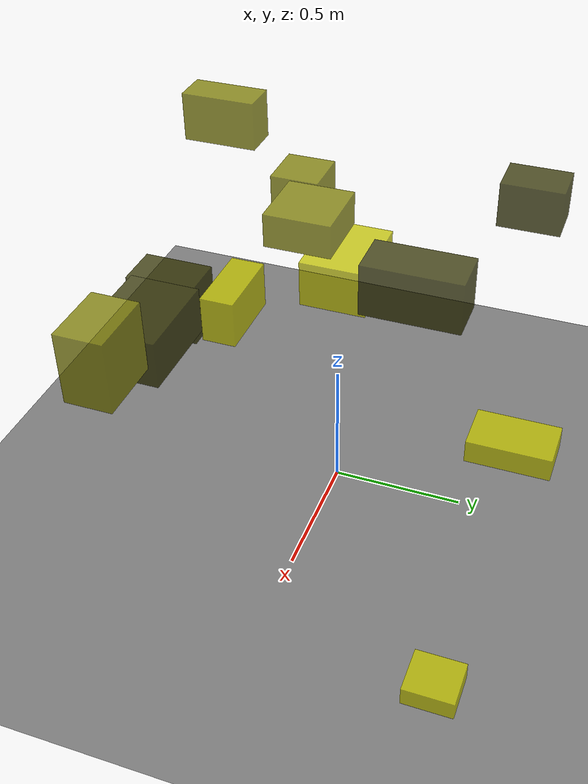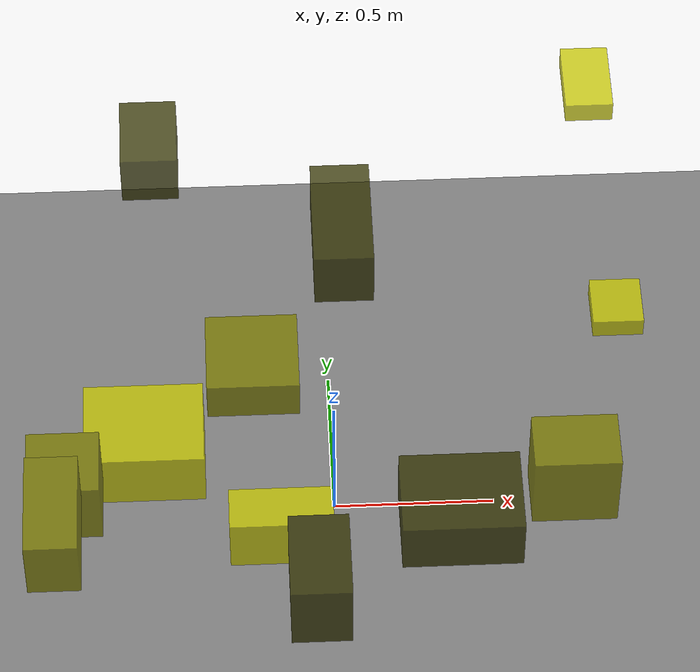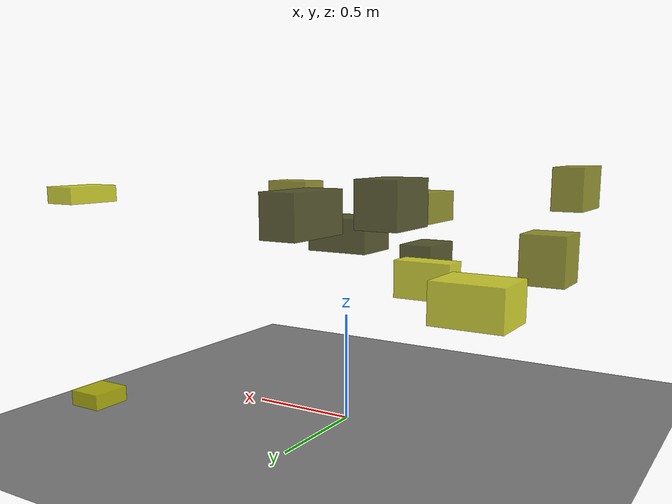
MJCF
<?xml version="1.0"?>
<mujoco model="obstacle_scene">
  <compiler angle="radian" coordinate="local"/>
  <option timestep="0.001" gravity="0 0 -9.81"/>

  <asset>
    <material name="obstacle_mat" rgba="0.8 0.8 0.0 0.8"/>
    <material name="ground_mat" rgba="0.5 0.5 0.5 1"/>
  </asset>

  <worldbody>
    <!-- Ground plane -->
    <geom name="ground" type="plane" size="3 3 0.1" material="ground_mat"/>

    <!-- Obstacles -->
    <body name="obstacle_0" pos="0.037415 0.299247 0.988063">
      <geom name="obs_0" type="box" size="0.088090 0.182049 0.099060" rgba="0.2 0.2 0.0 0.8"/>
    </body>
    <body name="obstacle_1" pos="0.668392 -0.562722 0.940680">
      <geom name="obs_1" type="box" size="0.122851 0.086925 0.134639" rgba="0.5 0.5 0.0 0.8"/>
    </body>
    <body name="obstacle_2" pos="0.940138 0.656117 0.134934">
      <geom name="obs_2" type="box" size="0.081114 0.087463 0.035212" rgba="0.8 0.8 0.0 0.8"/>
    </body>
    <body name="obstacle_3" pos="-0.532831 0.575626 1.072574">
      <geom name="obs_3" type="box" size="0.084299 0.118069 0.087616" rgba="0.2 0.2 0.0 0.8"/>
    </body>
    <body name="obstacle_4" pos="-0.243216 -0.196742 0.998293">
      <geom name="obs_4" type="box" size="0.133735 0.130318 0.066882" rgba="0.5 0.5 0.0 0.8"/>
    </body>
    <body name="obstacle_5" pos="-0.572869 -0.164226 0.592533">
      <geom name="obs_5" type="box" size="0.178170 0.140538 0.100708" rgba="0.8 0.8 0.0 0.8"/>
    </body>
    <body name="obstacle_6" pos="0.344953 -0.593889 0.799654">
      <geom name="obs_6" type="box" size="0.175042 0.132732 0.090706" rgba="0.2 0.2 0.0 0.8"/>
    </body>
    <body name="obstacle_7" pos="-0.814724 -0.784469 1.067239">
      <geom name="obs_7" type="box" size="0.074765 0.156792 0.102587" rgba="0.5 0.5 0.0 0.8"/>
    </body>
    <body name="obstacle_8" pos="0.806281 0.788920 1.071865">
      <geom name="obs_8" type="box" size="0.071267 0.117084 0.034227" rgba="0.8 0.8 0.0 0.8"/>
    </body>
    <body name="obstacle_9" pos="-0.066733 -0.707522 0.639534">
      <geom name="obs_9" type="box" size="0.088830 0.137981 0.122743" rgba="0.2 0.2 0.0 0.8"/>
    </body>
    <body name="obstacle_10" pos="-0.801055 -0.437912 0.768901">
      <geom name="obs_10" type="box" size="0.106003 0.103974 0.115171" rgba="0.5 0.5 0.0 0.8"/>
    </body>
    <body name="obstacle_11" pos="-0.172897 -0.493792 0.606389">
      <geom name="obs_11" type="box" size="0.153015 0.067896 0.096352" rgba="0.8 0.8 0.0 0.8"/>
    </body>
  </worldbody>
</mujoco>
